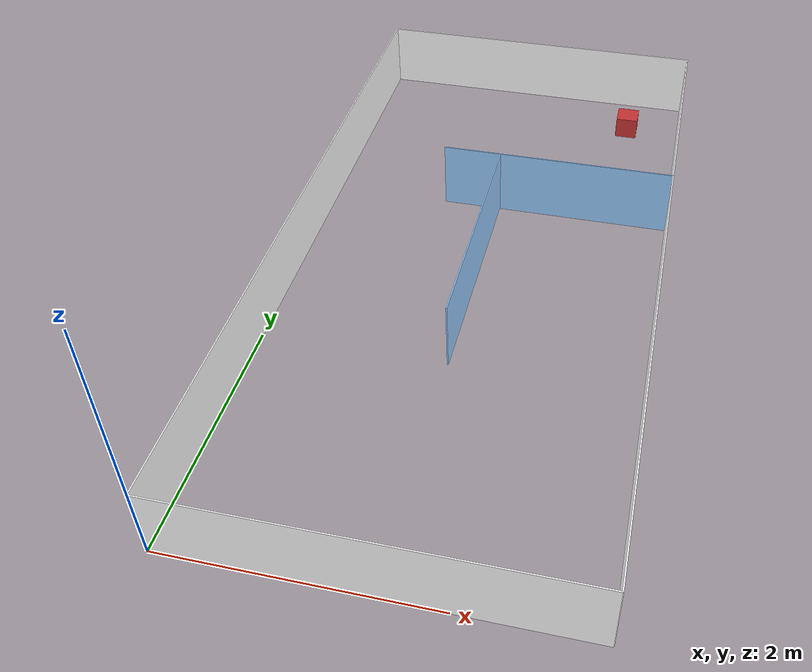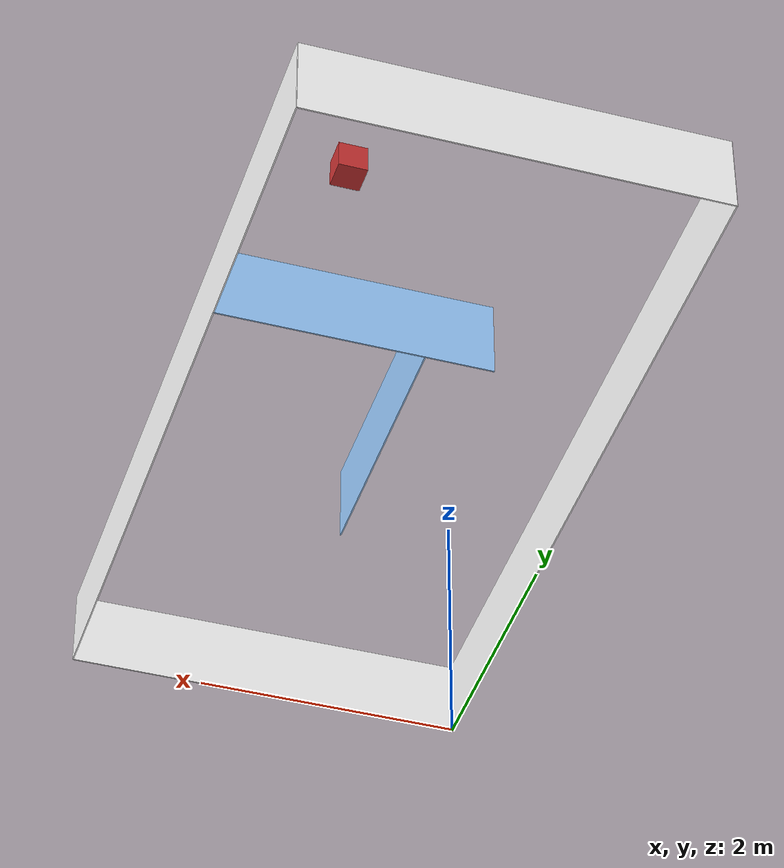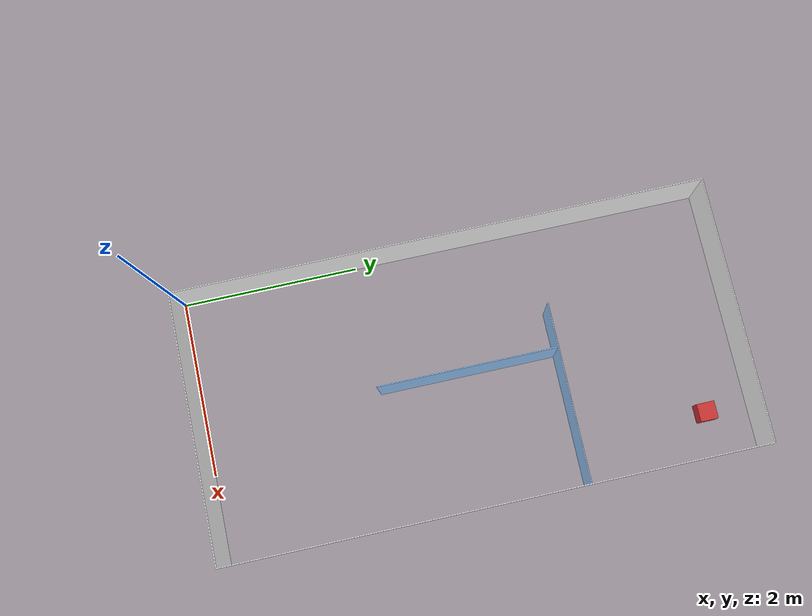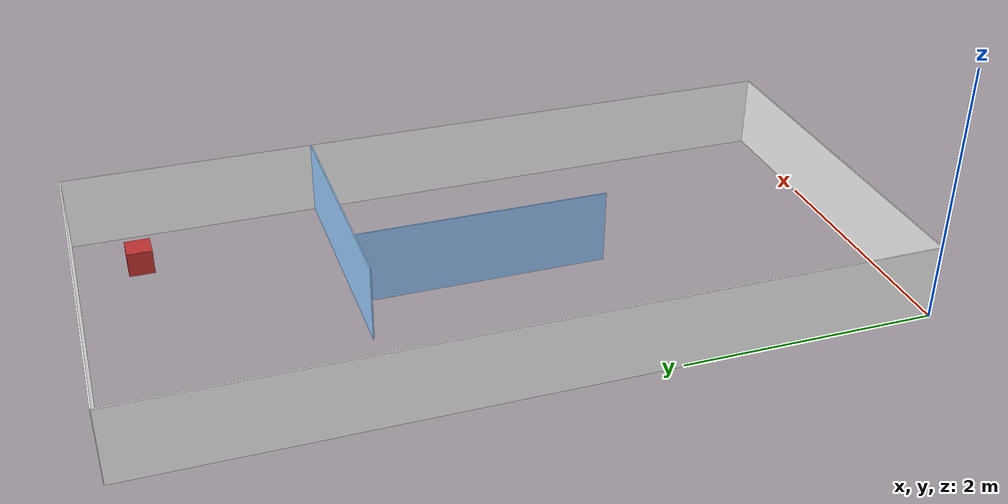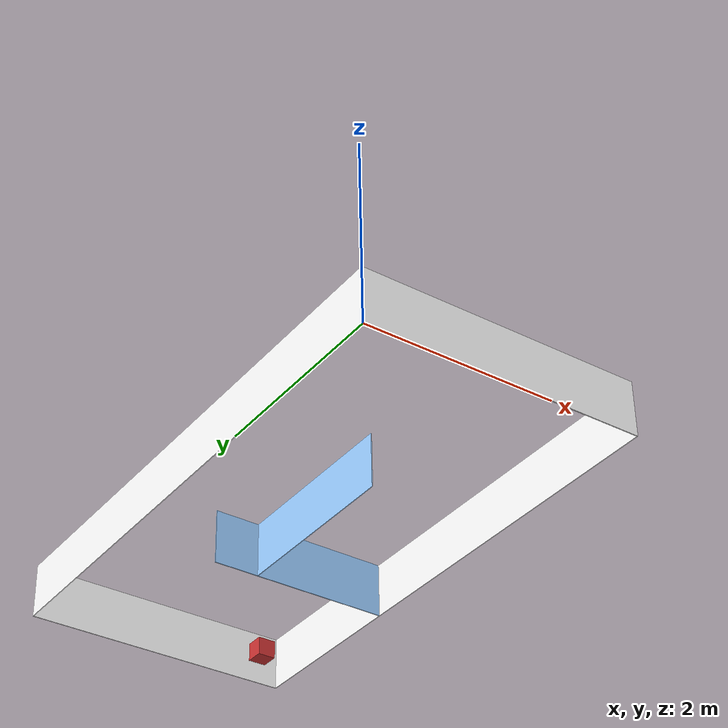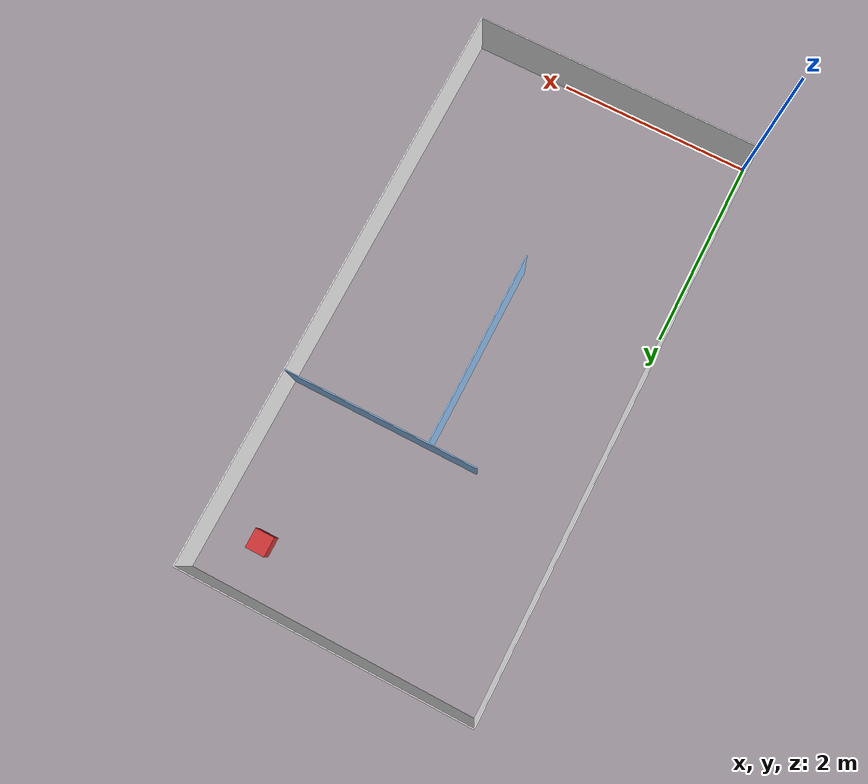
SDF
<sdf version="1.5">
  <model name="maze_map">
    <!-- Make this entire model static so it doesn’t move -->
    <static>1</static>
    <link name="maze_link">

      <!-- ===================== BOUNDARY WALLS ===================== -->
      <!-- LEFT WALL (x=0) -->
      <collision name="wall_bounding_left_collision">
        <!-- Pose: (x y z roll pitch yaw) -->
        <pose>0 3 0.3 0 0 0</pose>
        <geometry>
          <box>
            <!-- size: thickness x length x height -->
            <size>0.01 6.0 0.6</size>
          </box>
        </geometry>
        <max_contacts>10</max_contacts>
        <surface>
          <bounce/>
          <friction><ode/></friction>
          <contact><ode/></contact>
        </surface>
      </collision>
      <visual name="wall_bounding_left_visual">
        <pose>0 3 0.3 0 0 0</pose>
        <geometry>
          <box>
            <size>0.01 6.0 0.6</size>
          </box>
        </geometry>
        <material>
          <ambient>1 1 1 1</ambient>
          <diffuse>1 1 1 1</diffuse>
          <specular>1 1 1 1</specular>
        </material>
      </visual>

      <!-- RIGHT WALL (x=3) -->
      <collision name="wall_bounding_right_collision">
        <pose>3 3 0.3 0 0 0</pose>
        <geometry>
          <box>
            <size>0.01 6.0 0.6</size>
          </box>
        </geometry>
        <max_contacts>10</max_contacts>
        <surface>
          <bounce/>
          <friction><ode/></friction>
          <contact><ode/></contact>
        </surface>
      </collision>
      <visual name="wall_bounding_right_visual">
        <pose>3 3 0.3 0 0 0</pose>
        <geometry>
          <box>
            <size>0.01 6.0 0.6</size>
          </box>
        </geometry>
        <material>
          <ambient>1 1 1 1</ambient>
          <diffuse>1 1 1 1</diffuse>
          <specular>1 1 1 1</specular>
        </material>
      </visual>

      <!-- BOTTOM WALL (y=0) -->
      <collision name="wall_bounding_bottom_collision">
        <pose>1.5 0 0.3 0 0 0</pose>
        <geometry>
          <box>
            <size>3.0 0.01 0.6</size>
          </box>
        </geometry>
        <max_contacts>10</max_contacts>
        <surface>
          <bounce/>
          <friction><ode/></friction>
          <contact><ode/></contact>
        </surface>
      </collision>
      <visual name="wall_bounding_bottom_visual">
        <pose>1.5 0 0.3 0 0 0</pose>
        <geometry>
          <box>
            <size>3.0 0.01 0.6</size>
          </box>
        </geometry>
        <material>
          <ambient>1 1 1 1</ambient>
          <diffuse>1 1 1 1</diffuse>
          <specular>1 1 1 1</specular>
        </material>
      </visual>

      <!-- TOP WALL (y=6) -->
      <collision name="wall_bounding_top_collision">
        <pose>1.5 6 0.3 0 0 0</pose>
        <geometry>
          <box>
            <size>3.0 0.01 0.6</size>
          </box>
        </geometry>
        <max_contacts>10</max_contacts>
        <surface>
          <bounce/>
          <friction><ode/></friction>
          <contact><ode/></contact>
        </surface>
      </collision>
      <visual name="wall_bounding_top_visual">
        <pose>1.5 6 0.3 0 0 0</pose>
        <geometry>
          <box>
            <size>3.0 0.01 0.6</size>
          </box>
        </geometry>
        <material>
          <ambient>1 1 1 1</ambient>
          <diffuse>1 1 1 1</diffuse>
          <specular>1 1 1 1</specular>
        </material>
      </visual>

      <!-- ===================== INTERNAL WALLS (Example) ===================== -->
      <!-- INTERNAL WALL #1: Vertical in the middle (x=1.5), from y=2..4 -->
      <collision name="wall_internal_vertical_collision">
        <pose>1.5 3 0.3 0 0 0</pose>
        <geometry>
          <box>
            <!-- 2m length in Y direction, 1cm thick in X, 0.6m tall -->
            <size>0.01 2.0 0.6</size>
          </box>
        </geometry>
        <max_contacts>10</max_contacts>
        <surface>
          <bounce/>
          <friction><ode/></friction>
          <contact><ode/></contact>
        </surface>
      </collision>
      <visual name="wall_internal_vertical_visual">
        <pose>1.5 3 0.3 0 0 0</pose>
        <geometry>
          <box>
            <size>0.01 2.0 0.6</size>
          </box>
        </geometry>
        <material>
          <ambient>1 1 1 1</ambient>
          <diffuse>0.6 0.8 1 1</diffuse>
          <specular>1 1 1 1</specular>
        </material>
      </visual>

      <!-- INTERNAL WALL #2: Horizontal near the top (y=4), from x=1..3 -->
      <collision name="wall_internal_horizontal_collision">
        <pose>2 4 0.3 0 0 0</pose>
        <geometry>
          <box>
            <!-- 2m length in X direction, 1cm thick in Y, 0.6m tall -->
            <size>2.0 0.01 0.6</size>
          </box>
        </geometry>
        <max_contacts>10</max_contacts>
        <surface>
          <bounce/>
          <friction><ode/></friction>
          <contact><ode/></contact>
        </surface>
      </collision>
      <visual name="wall_internal_horizontal_visual">
        <pose>2 4 0.3 0 0 0</pose>
        <geometry>
          <box>
            <size>2.0 0.01 0.6</size>
          </box>
        </geometry>
        <material>
          <ambient>1 1 1 1</ambient>
          <diffuse>0.6 0.8 1 1</diffuse>
          <specular>1 1 1 1</specular>
        </material>
      </visual>

      <!-- ===================== BOX (20cm each side) ===================== -->
      <!-- Placed near top-right, half its height above ground (z=0.1) -->
      <collision name="box_collision">
        <pose>2.5 5.5 0.1 0 0 0</pose>
        <geometry>
          <box>
            <size>0.2 0.2 0.2</size>
          </box>
        </geometry>
        <max_contacts>10</max_contacts>
        <surface>
          <bounce/>
          <friction><ode/></friction>
          <contact><ode/></contact>
        </surface>
      </collision>
      <visual name="box_visual">
        <pose>2.5 5.5 0.1 0 0 0</pose>
        <geometry>
          <box>
            <size>0.2 0.2 0.2</size>
          </box>
        </geometry>
        <material>
          <ambient>0.8 0.2 0.2 1</ambient>
          <diffuse>0.8 0.2 0.2 1</diffuse>
          <specular>1 1 1 1</specular>
        </material>
      </visual>

    </link>
  </model>
</sdf>
